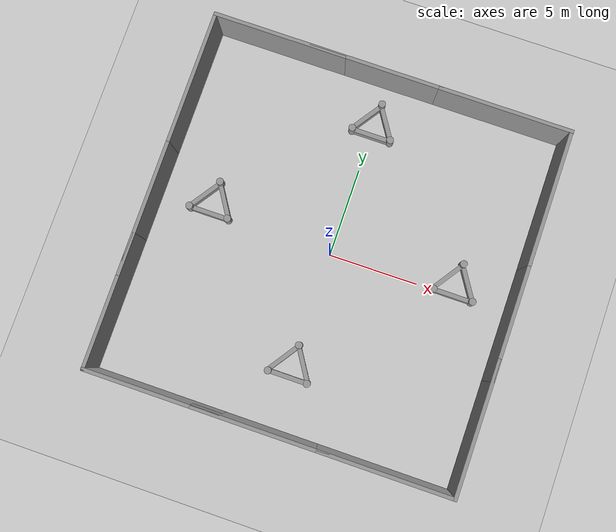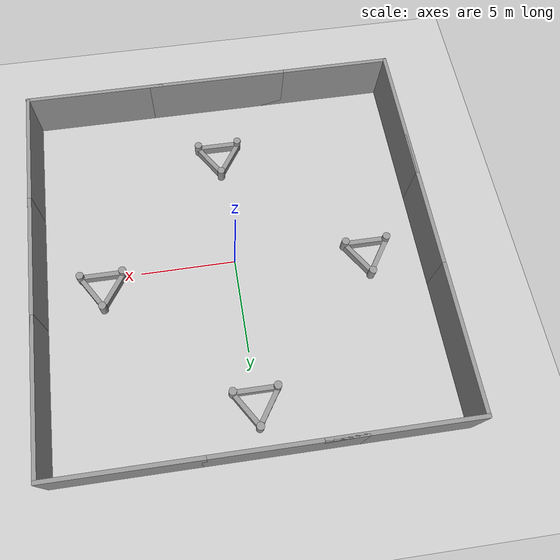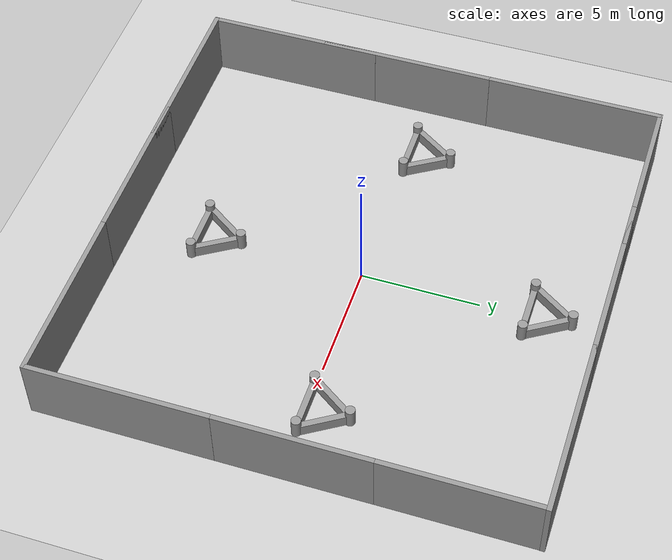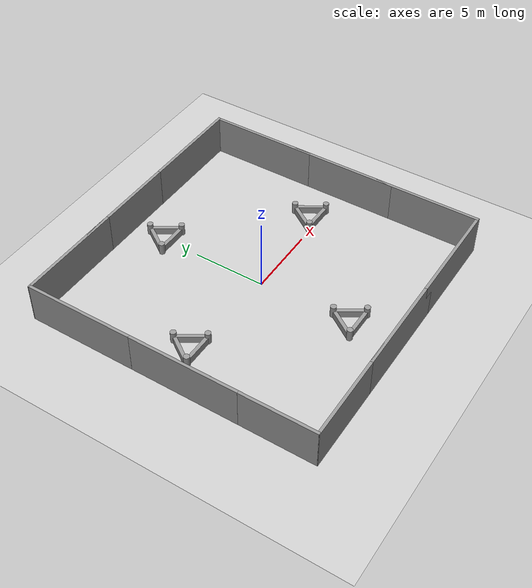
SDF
<sdf version="1.7">
 <world name="default">
  <light name="sun" type="directional">
   <pose>0 0 10 0 -0 0</pose>
   <diffuse>0.8 0.8 0.8 1</diffuse>
   <specular>0.2 0.2 0.2 1</specular>
   <attenuation>
    <range>1000</range>
    <constant>0.9</constant>
    <linear>0.01</linear>
    <quadratic>0.001</quadratic>
   </attenuation>
   <direction>-0.5 0.1 -0.9</direction>
   <spot><inner_angle>0</inner_angle><outer_angle>0</outer_angle><falloff>0</falloff></spot>
  </light>
  <model name="ground_plane">
   <static>1</static>
   <link name="link">
    <collision name="collision">
     <geometry><plane><normal>0 0 1</normal><size>100 100</size></plane></geometry>
     <surface><friction><ode><mu>100</mu><mu2>50</mu2></ode></friction></surface>
    </collision>
    <visual name="visual">
     <cast_shadows>0</cast_shadows>
     <geometry><plane><normal>0 0 1</normal><size>100 100</size></plane></geometry>
     <material>
      <script><uri>file://media/materials/scripts/gazebo.material</uri><name>Gazebo/Grey</name></script>
     </material>
    </visual>
   </link>
  </model>
  <gravity>0 0 -9.8</gravity>
  <magnetic_field>6e-06 2.3e-05 -4.2e-05</magnetic_field>
  <atmosphere type="adiabatic"/>
  <physics type="ode">
   <max_step_size>0.001</max_step_size>
   <real_time_factor>1</real_time_factor>
   <real_time_update_rate>1000</real_time_update_rate>
  </physics>
  <scene><ambient>0.4 0.4 0.4 1</ambient><background>0.7 0.7 0.7 1</background><shadows>1</shadows></scene>
  <spherical_coordinates>
   <surface_model>EARTH_WGS84</surface_model>
   <latitude_deg>0</latitude_deg>
   <longitude_deg>0</longitude_deg>
   <elevation>0</elevation>
   <heading_deg>0</heading_deg>
  </spherical_coordinates>
  <model name="grey_wall">
   <static>1</static>
   <link name="link">
    <pose>0 0 1.4 0 -0 0</pose>
    <collision name="collision"><geometry><box><size>7.5 0.2 2.8</size></box></geometry></collision>
    <visual name="visual">
     <cast_shadows>0</cast_shadows>
     <geometry><box><size>7.5 0.2 2.8</size></box></geometry>
     <material>
      <script>
       <uri>model://grey_wall/materials/scripts</uri>
       <uri>model://grey_wall/materials/textures</uri>
       <name>vrc/grey_wall</name>
      </script>
     </material>
    </visual>
   </link>
   <pose>-6.282 10.0545 0 0 -0 0</pose>
  </model>
  <model name="grey_wall_0">
   <static>1</static>
   <link name="link">
    <pose>0 0 1.4 0 -0 0</pose>
    <collision name="collision"><geometry><box><size>7.5 0.2 2.8</size></box></geometry></collision>
    <visual name="visual">
     <cast_shadows>0</cast_shadows>
     <geometry><box><size>7.5 0.2 2.8</size></box></geometry>
     <material>
      <script>
       <uri>model://grey_wall/materials/scripts</uri>
       <uri>model://grey_wall/materials/textures</uri>
       <name>vrc/grey_wall</name>
      </script>
     </material>
    </visual>
   </link>
   <pose>-0.815722 10.0545 0 0 -0 0</pose>
  </model>
  <model name="grey_wall_1">
   <static>1</static>
   <link name="link">
    <pose>0 0 1.4 0 -0 0</pose>
    <collision name="collision"><geometry><box><size>7.5 0.2 2.8</size></box></geometry></collision>
    <visual name="visual">
     <cast_shadows>0</cast_shadows>
     <geometry><box><size>7.5 0.2 2.8</size></box></geometry>
     <material>
      <script>
       <uri>model://grey_wall/materials/scripts</uri>
       <uri>model://grey_wall/materials/textures</uri>
       <name>vrc/grey_wall</name>
      </script>
     </material>
    </visual>
   </link>
   <pose>6.42629 10.0545 0 0 -0 0</pose>
  </model>
  <model name="grey_wall_2">
   <static>1</static>
   <link name="link">
    <pose>0 0 1.4 0 -0 0</pose>
    <collision name="collision"><geometry><box><size>7.5 0.2 2.8</size></box></geometry></collision>
    <visual name="visual">
     <cast_shadows>0</cast_shadows>
     <geometry><box><size>7.5 0.2 2.8</size></box></geometry>
     <material>
      <script>
       <uri>model://grey_wall/materials/scripts</uri>
       <uri>model://grey_wall/materials/textures</uri>
       <name>vrc/grey_wall</name>
      </script>
     </material>
    </visual>
   </link>
   <pose>10.0654 6.24894 0 0 0 -1.57098</pose>
  </model>
  <model name="grey_wall_2_clone">
   <static>1</static>
   <link name="link">
    <pose>0 0 1.4 0 -0 0</pose>
    <collision name="collision"><geometry><box><size>7.5 0.2 2.8</size></box></geometry></collision>
    <visual name="visual">
     <cast_shadows>0</cast_shadows>
     <geometry><box><size>7.5 0.2 2.8</size></box></geometry>
     <material>
      <script>
       <uri>model://grey_wall/materials/scripts</uri>
       <uri>model://grey_wall/materials/textures</uri>
       <name>vrc/grey_wall</name>
      </script>
     </material>
    </visual>
   </link>
   <pose>10.0654 -0.052119 0 0 0 -1.57098</pose>
  </model>
  <model name="grey_wall_2_clone_0">
   <static>1</static>
   <link name="link">
    <pose>0 0 1.4 0 -0 0</pose>
    <collision name="collision"><geometry><box><size>7.5 0.2 2.8</size></box></geometry></collision>
    <visual name="visual">
     <cast_shadows>0</cast_shadows>
     <geometry><box><size>7.5 0.2 2.8</size></box></geometry>
     <material>
      <script>
       <uri>model://grey_wall/materials/scripts</uri>
       <uri>model://grey_wall/materials/textures</uri>
       <name>vrc/grey_wall</name>
      </script>
     </material>
    </visual>
   </link>
   <pose>10.0654 -6.2879 0 0 0 -1.57098</pose>
  </model>
  <model name="grey_wall_2_clone_0_clone">
   <static>1</static>
   <link name="link">
    <pose>0 0 1.4 0 -0 0</pose>
    <collision name="collision"><geometry><box><size>7.5 0.2 2.8</size></box></geometry></collision>
    <visual name="visual">
     <cast_shadows>0</cast_shadows>
     <geometry><box><size>7.5 0.2 2.8</size></box></geometry>
     <material>
      <script>
       <uri>model://grey_wall/materials/scripts</uri>
       <uri>model://grey_wall/materials/textures</uri>
       <name>vrc/grey_wall</name>
      </script>
     </material>
    </visual>
   </link>
   <pose>-9.93662 6.34839 0 0 0 -1.57098</pose>
  </model>
  <model name="grey_wall_2_clone_0_clone_clone">
   <static>1</static>
   <link name="link">
    <pose>0 0 1.4 0 -0 0</pose>
    <collision name="collision"><geometry><box><size>7.5 0.2 2.8</size></box></geometry></collision>
    <visual name="visual">
     <cast_shadows>0</cast_shadows>
     <geometry><box><size>7.5 0.2 2.8</size></box></geometry>
     <material>
      <script>
       <uri>model://grey_wall/materials/scripts</uri>
       <uri>model://grey_wall/materials/textures</uri>
       <name>vrc/grey_wall</name>
      </script>
     </material>
    </visual>
   </link>
   <pose>-9.93662 -1.11197 0 0 0 -1.57098</pose>
  </model>
  <model name="grey_wall_2_clone_0_clone_clone_clone">
   <static>1</static>
   <link name="link">
    <pose>0 0 1.4 0 -0 0</pose>
    <collision name="collision"><geometry><box><size>7.5 0.2 2.8</size></box></geometry></collision>
    <visual name="visual">
     <cast_shadows>0</cast_shadows>
     <geometry><box><size>7.5 0.2 2.8</size></box></geometry>
     <material>
      <script>
       <uri>model://grey_wall/materials/scripts</uri>
       <uri>model://grey_wall/materials/textures</uri>
       <name>vrc/grey_wall</name>
      </script>
     </material>
    </visual>
   </link>
   <pose>-9.93662 -6.25521 0 0 0 -1.57098</pose>
  </model>
  <model name="grey_wall_1_clone">
   <static>1</static>
   <link name="link">
    <pose>0 0 1.4 0 -0 0</pose>
    <collision name="collision"><geometry><box><size>7.5 0.2 2.8</size></box></geometry></collision>
    <visual name="visual">
     <cast_shadows>0</cast_shadows>
     <geometry><box><size>7.5 0.2 2.8</size></box></geometry>
     <material>
      <script>
       <uri>model://grey_wall/materials/scripts</uri>
       <uri>model://grey_wall/materials/textures</uri>
       <name>vrc/grey_wall</name>
      </script>
     </material>
    </visual>
   </link>
   <pose>6.41141 -9.9422 0 0 -0 0</pose>
  </model>
  <model name="grey_wall_1_clone_clone">
   <static>1</static>
   <link name="link">
    <pose>0 0 1.4 0 -0 0</pose>
    <collision name="collision"><geometry><box><size>7.5 0.2 2.8</size></box></geometry></collision>
    <visual name="visual">
     <cast_shadows>0</cast_shadows>
     <geometry><box><size>7.5 0.2 2.8</size></box></geometry>
     <material>
      <script>
       <uri>model://grey_wall/materials/scripts</uri>
       <uri>model://grey_wall/materials/textures</uri>
       <name>vrc/grey_wall</name>
      </script>
     </material>
    </visual>
   </link>
   <pose>-0.386943 -9.9422 0 0 -0 0</pose>
  </model>
  <model name="grey_wall_1_clone_clone_0">
   <static>1</static>
   <link name="link">
    <pose>0 0 1.4 0 -0 0</pose>
    <collision name="collision"><geometry><box><size>7.5 0.2 2.8</size></box></geometry></collision>
    <visual name="visual">
     <cast_shadows>0</cast_shadows>
     <geometry><box><size>7.5 0.2 2.8</size></box></geometry>
     <material>
      <script>
       <uri>model://grey_wall/materials/scripts</uri>
       <uri>model://grey_wall/materials/textures</uri>
       <name>vrc/grey_wall</name>
      </script>
     </material>
    </visual>
   </link>
   <pose>-6.26999 -9.9422 0 0 -0 0</pose>
  </model>
  <model name="model_01_with_plugin">
   <pose>7 0 0.1 0 0 0</pose>
   <static>false</static>
   <include><uri>model://custom_final_obj</uri></include>
   <plugin name="moving_plugin" filename="libmoving_plugin.so">
    <linear_vel>0.2</linear_vel>
    <iterations>15000</iterations>
    <axis>2</axis>
    <start_direction>1</start_direction>
   </plugin>
  </model>
  <model name="model_02_with_plugin">
   <pose>0 7 0.1 0 0 0</pose>
   <static>false</static>
   <include><uri>model://custom_final_obj</uri></include>
   <plugin name="moving_plugin" filename="libmoving_plugin.so">
    <linear_vel>0.2</linear_vel>
    <iterations>15000</iterations>
    <axis>1</axis>
    <start_direction>-1</start_direction>
   </plugin>
  </model>
  <model name="model_03_with_plugin">
   <pose>-7 0 0.1 0 0 0</pose>
   <static>false</static>
   <include><uri>model://custom_final_obj</uri></include>
   <plugin name="moving_plugin" filename="libmoving_plugin.so">
    <linear_vel>0.2</linear_vel>
    <iterations>15000</iterations>
    <axis>2</axis>
    <start_direction>-1</start_direction>
   </plugin>
  </model>
  <model name="model_04_with_plugin">
   <pose>0 -7 0.1 0 0 0</pose>
   <static>false</static>
   <include><uri>model://custom_final_obj</uri></include>
   <plugin name="moving_plugin" filename="libmoving_plugin.so">
    <linear_vel>0.2</linear_vel>
    <iterations>15000</iterations>
    <axis>1</axis>
    <start_direction>1</start_direction>
   </plugin>
  </model>
 </world>
</sdf>

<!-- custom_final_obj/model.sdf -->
<sdf version='1.7'>
  <model name='custom_final_obj'>
    <link name='link_0'>
      <inertial>
        <mass>1</mass>
        <inertia>
          <ixx>0.166667</ixx>
          <ixy>0</ixy>
          <ixz>0</ixz>
          <iyy>0.166667</iyy>
          <iyz>0</iyz>
          <izz>0.166667</izz>
        </inertia>
        <pose>0 0 0 0 -0 0</pose>
      </inertial>
      <pose>0 -0 0.25 0 -0 0</pose>
      <gravity>1</gravity>
      <self_collide>0</self_collide>
      <kinematic>0</kinematic>
      <enable_wind>0</enable_wind>
      <visual name='visual'>
        <pose>0 0 0 0 -0 0</pose>
        <geometry>
          <box>
            <size>2 0.25 0.5</size>
          </box>
        </geometry>
        <material>
          <lighting>1</lighting>
          <script>
            <uri>file://media/materials/scripts/gazebo.material</uri>
            <name>Gazebo/Grey</name>
          </script>
          <shader type='pixel'>
            <normal_map>__default__</normal_map>
          </shader>
          <ambient>0.3 0.3 0.3 1</ambient>
          <diffuse>0.7 0.7 0.7 1</diffuse>
          <specular>0.01 0.01 0.01 1</specular>
          <emissive>0 0 0 1</emissive>
        </material>
        <transparency>0</transparency>
        <cast_shadows>1</cast_shadows>
      </visual>
      <collision name='collision'>
        <laser_retro>0</laser_retro>
        <max_contacts>10</max_contacts>
        <pose>0 0 0 0 -0 0</pose>
        <geometry>
          <box>
            <size>2 0.25 0.5</size>
          </box>
        </geometry>
        <surface>
          <friction>
            <ode>
              <mu>0</mu>
              <mu2>0</mu2>
              <fdir1>0 0 0</fdir1>
              <slip1>1</slip1>
              <slip2>1</slip2>
            </ode>
            <torsional>
              <coefficient>1</coefficient>
              <patch_radius>0</patch_radius>
              <surface_radius>0</surface_radius>
              <use_patch_radius>1</use_patch_radius>
              <ode>
                <slip>0</slip>
              </ode>
            </torsional>
          </friction>
          <bounce>
            <restitution_coefficient>0</restitution_coefficient>
            <threshold>1e+06</threshold>
          </bounce>
          <contact>
            <collide_without_contact>0</collide_without_contact>
            <collide_without_contact_bitmask>1</collide_without_contact_bitmask>
            <collide_bitmask>1</collide_bitmask>
            <ode>
              <soft_cfm>0</soft_cfm>
              <soft_erp>0.2</soft_erp>
              <kp>1e+13</kp>
              <kd>1</kd>
              <max_vel>0.01</max_vel>
              <min_depth>0</min_depth>
            </ode>
            <bullet>
              <split_impulse>1</split_impulse>
              <split_impulse_penetration_threshold>-0.01</split_impulse_penetration_threshold>
              <soft_cfm>0</soft_cfm>
              <soft_erp>0.2</soft_erp>
              <kp>1e+13</kp>
              <kd>1</kd>
            </bullet>
          </contact>
        </surface>
      </collision>
    </link>
    <link name='link_0_clone'>
      <inertial>
        <mass>1</mass>
        <inertia>
          <ixx>0.166667</ixx>
          <ixy>0</ixy>
          <ixz>0</ixz>
          <iyy>0.166667</iyy>
          <iyz>0</iyz>
          <izz>0.166667</izz>
        </inertia>
        <pose>0 0 0 0 -0 0</pose>
      </inertial>
      <pose>-0.532788 0.926798 0.250001 -2e-06 -2e-06 -2.1717</pose>
      <gravity>1</gravity>
      <self_collide>0</self_collide>
      <kinematic>0</kinematic>
      <enable_wind>0</enable_wind>
      <visual name='visual'>
        <pose>0 0 0 0 -0 0</pose>
        <geometry>
          <box>
            <size>2 0.25 0.5</size>
          </box>
        </geometry>
        <material>
          <lighting>1</lighting>
          <script>
            <uri>file://media/materials/scripts/gazebo.material</uri>
            <name>Gazebo/Grey</name>
          </script>
          <shader type='pixel'>
            <normal_map>__default__</normal_map>
          </shader>
          <ambient>0.3 0.3 0.3 1</ambient>
          <diffuse>0.7 0.7 0.7 1</diffuse>
          <specular>0.01 0.01 0.01 1</specular>
          <emissive>0 0 0 1</emissive>
        </material>
        <transparency>0</transparency>
        <cast_shadows>1</cast_shadows>
      </visual>
      <collision name='collision'>
        <laser_retro>0</laser_retro>
        <max_contacts>10</max_contacts>
        <pose>0 0 0 0 -0 0</pose>
        <geometry>
          <box>
            <size>2 0.25 0.5</size>
          </box>
        </geometry>
        <surface>
          <friction>
            <ode>
              <mu>0</mu>
              <mu2>0</mu2>
              <fdir1>0 0 0</fdir1>
              <slip1>1</slip1>
              <slip2>1</slip2>
            </ode>
            <torsional>
              <coefficient>1</coefficient>
              <patch_radius>0</patch_radius>
              <surface_radius>0</surface_radius>
              <use_patch_radius>1</use_patch_radius>
              <ode>
                <slip>0</slip>
              </ode>
            </torsional>
          </friction>
          <bounce>
            <restitution_coefficient>0</restitution_coefficient>
            <threshold>1e+06</threshold>
          </bounce>
          <contact>
            <collide_without_contact>0</collide_without_contact>
            <collide_without_contact_bitmask>1</collide_without_contact_bitmask>
            <collide_bitmask>1</collide_bitmask>
            <ode>
              <soft_cfm>0</soft_cfm>
              <soft_erp>0.2</soft_erp>
              <kp>1e+13</kp>
              <kd>1</kd>
              <max_vel>0.01</max_vel>
              <min_depth>0</min_depth>
            </ode>
            <bullet>
              <split_impulse>1</split_impulse>
              <split_impulse_penetration_threshold>-0.01</split_impulse_penetration_threshold>
              <soft_cfm>0</soft_cfm>
              <soft_erp>0.2</soft_erp>
              <kp>1e+13</kp>
              <kd>1</kd>
            </bullet>
          </contact>
        </surface>
      </collision>
    </link>
    <link name='link_0_clone_clone'>
      <inertial>
        <mass>1</mass>
        <inertia>
          <ixx>0.166667</ixx>
          <ixy>0</ixy>
          <ixz>0</ixz>
          <iyy>0.166667</iyy>
          <iyz>0</iyz>
          <izz>0.166667</izz>
        </inertia>
        <pose>0 0 0 0 -0 0</pose>
      </inertial>
      <pose>0.553452 0.921008 0.25 -5e-06 3e-06 -1.00541</pose>
      <gravity>1</gravity>
      <self_collide>0</self_collide>
      <kinematic>0</kinematic>
      <enable_wind>0</enable_wind>
      <visual name='visual'>
        <pose>0 0 0 0 -0 0</pose>
        <geometry>
          <box>
            <size>2 0.25 0.5</size>
          </box>
        </geometry>
        <material>
          <lighting>1</lighting>
          <script>
            <uri>file://media/materials/scripts/gazebo.material</uri>
            <name>Gazebo/Grey</name>
          </script>
          <shader type='pixel'>
            <normal_map>__default__</normal_map>
          </shader>
          <ambient>0.3 0.3 0.3 1</ambient>
          <diffuse>0.7 0.7 0.7 1</diffuse>
          <specular>0.01 0.01 0.01 1</specular>
          <emissive>0 0 0 1</emissive>
        </material>
        <transparency>0</transparency>
        <cast_shadows>1</cast_shadows>
      </visual>
      <collision name='collision'>
        <laser_retro>0</laser_retro>
        <max_contacts>10</max_contacts>
        <pose>0 0 0 0 -0 0</pose>
        <geometry>
          <box>
            <size>2 0.25 0.5</size>
          </box>
        </geometry>
        <surface>
          <friction>
            <ode>
              <mu>0</mu>
              <mu2>0</mu2>
              <fdir1>0 0 0</fdir1>
              <slip1>1</slip1>
              <slip2>1</slip2>
            </ode>
            <torsional>
              <coefficient>1</coefficient>
              <patch_radius>0</patch_radius>
              <surface_radius>0</surface_radius>
              <use_patch_radius>1</use_patch_radius>
              <ode>
                <slip>0</slip>
              </ode>
            </torsional>
          </friction>
          <bounce>
            <restitution_coefficient>0</restitution_coefficient>
            <threshold>1e+06</threshold>
          </bounce>
          <contact>
            <collide_without_contact>0</collide_without_contact>
            <collide_without_contact_bitmask>1</collide_without_contact_bitmask>
            <collide_bitmask>1</collide_bitmask>
            <ode>
              <soft_cfm>0</soft_cfm>
              <soft_erp>0.2</soft_erp>
              <kp>1e+13</kp>
              <kd>1</kd>
              <max_vel>0.01</max_vel>
              <min_depth>0</min_depth>
            </ode>
            <bullet>
              <split_impulse>1</split_impulse>
              <split_impulse_penetration_threshold>-0.01</split_impulse_penetration_threshold>
              <soft_cfm>0</soft_cfm>
              <soft_erp>0.2</soft_erp>
              <kp>1e+13</kp>
              <kd>1</kd>
            </bullet>
          </contact>
        </surface>
      </collision>
    </link>
    <link name='link_1'>
      <inertial>
        <mass>1</mass>
        <inertia>
          <ixx>0.145833</ixx>
          <ixy>0</ixy>
          <ixz>0</ixz>
          <iyy>0.145833</iyy>
          <iyz>0</iyz>
          <izz>0.125</izz>
        </inertia>
        <pose>0 0 0 0 -0 0</pose>
      </inertial>
      <pose>1.1 0 0.4 0 -0 0</pose>
      <gravity>1</gravity>
      <self_collide>0</self_collide>
      <kinematic>0</kinematic>
      <enable_wind>0</enable_wind>
      <visual name='visual'>
        <pose>0 0 0 0 -0 0</pose>
        <geometry>
          <cylinder>
            <radius>0.2</radius>
            <length>0.8</length>
          </cylinder>
        </geometry>
        <material>
          <lighting>1</lighting>
          <script>
            <uri>file://media/materials/scripts/gazebo.material</uri>
            <name>Gazebo/Grey</name>
          </script>
          <shader type='pixel'>
            <normal_map>__default__</normal_map>
          </shader>
          <ambient>0.3 0.3 0.3 1</ambient>
          <diffuse>0.7 0.7 0.7 1</diffuse>
          <specular>0.01 0.01 0.01 1</specular>
          <emissive>0 0 0 1</emissive>
        </material>
        <transparency>0</transparency>
        <cast_shadows>1</cast_shadows>
      </visual>
      <collision name='collision'>
        <laser_retro>0</laser_retro>
        <max_contacts>10</max_contacts>
        <pose>0 0 0 0 -0 0</pose>
        <geometry>
          <cylinder>
            <radius>0.2</radius>
            <length>0.8</length>
          </cylinder>
        </geometry>
        <surface>
          <friction>
            <ode>
              <mu>0</mu>
              <mu2>0</mu2>
              <fdir1>0 0 0</fdir1>
              <slip1>1</slip1>
              <slip2>1</slip2>
            </ode>
            <torsional>
              <coefficient>1</coefficient>
              <patch_radius>0</patch_radius>
              <surface_radius>0</surface_radius>
              <use_patch_radius>1</use_patch_radius>
              <ode>
                <slip>0</slip>
              </ode>
            </torsional>
          </friction>
          <bounce>
            <restitution_coefficient>0</restitution_coefficient>
            <threshold>1e+06</threshold>
          </bounce>
          <contact>
            <collide_without_contact>0</collide_without_contact>
            <collide_without_contact_bitmask>1</collide_without_contact_bitmask>
            <collide_bitmask>1</collide_bitmask>
            <ode>
              <soft_cfm>0</soft_cfm>
              <soft_erp>0.2</soft_erp>
              <kp>1e+13</kp>
              <kd>1</kd>
              <max_vel>0.01</max_vel>
              <min_depth>0</min_depth>
            </ode>
            <bullet>
              <split_impulse>1</split_impulse>
              <split_impulse_penetration_threshold>-0.01</split_impulse_penetration_threshold>
              <soft_cfm>0</soft_cfm>
              <soft_erp>0.2</soft_erp>
              <kp>1e+13</kp>
              <kd>1</kd>
            </bullet>
          </contact>
        </surface>
      </collision>
    </link>
    <link name='link_1_clone'>
      <inertial>
        <mass>1</mass>
        <inertia>
          <ixx>0.145833</ixx>
          <ixy>0</ixy>
          <ixz>0</ixz>
          <iyy>0.145833</iyy>
          <iyz>0</iyz>
          <izz>0.125</izz>
        </inertia>
        <pose>0 0 0 0 -0 0</pose>
      </inertial>
      <pose>-1.1 -0 0.4 0 -0 0</pose>
      <gravity>1</gravity>
      <self_collide>0</self_collide>
      <kinematic>0</kinematic>
      <enable_wind>0</enable_wind>
      <visual name='visual'>
        <pose>0 0 0 0 -0 0</pose>
        <geometry>
          <cylinder>
            <radius>0.2</radius>
            <length>0.8</length>
          </cylinder>
        </geometry>
        <material>
          <lighting>1</lighting>
          <script>
            <uri>file://media/materials/scripts/gazebo.material</uri>
            <name>Gazebo/Grey</name>
          </script>
          <shader type='pixel'>
            <normal_map>__default__</normal_map>
          </shader>
          <ambient>0.3 0.3 0.3 1</ambient>
          <diffuse>0.7 0.7 0.7 1</diffuse>
          <specular>0.01 0.01 0.01 1</specular>
          <emissive>0 0 0 1</emissive>
        </material>
        <transparency>0</transparency>
        <cast_shadows>1</cast_shadows>
      </visual>
      <collision name='collision'>
        <laser_retro>0</laser_retro>
        <max_contacts>10</max_contacts>
        <pose>0 0 0 0 -0 0</pose>
        <geometry>
          <cylinder>
            <radius>0.2</radius>
            <length>0.8</length>
          </cylinder>
        </geometry>
        <surface>
          <friction>
            <ode>
              <mu>0</mu>
              <mu2>0</mu2>
              <fdir1>0 0 0</fdir1>
              <slip1>1</slip1>
              <slip2>1</slip2>
            </ode>
            <torsional>
              <coefficient>1</coefficient>
              <patch_radius>0</patch_radius>
              <surface_radius>0</surface_radius>
              <use_patch_radius>1</use_patch_radius>
              <ode>
                <slip>0</slip>
              </ode>
            </torsional>
          </friction>
          <bounce>
            <restitution_coefficient>0</restitution_coefficient>
            <threshold>1e+06</threshold>
          </bounce>
          <contact>
            <collide_without_contact>0</collide_without_contact>
            <collide_without_contact_bitmask>1</collide_without_contact_bitmask>
            <collide_bitmask>1</collide_bitmask>
            <ode>
              <soft_cfm>0</soft_cfm>
              <soft_erp>0.2</soft_erp>
              <kp>1e+13</kp>
              <kd>1</kd>
              <max_vel>0.01</max_vel>
              <min_depth>0</min_depth>
            </ode>
            <bullet>
              <split_impulse>1</split_impulse>
              <split_impulse_penetration_threshold>-0.01</split_impulse_penetration_threshold>
              <soft_cfm>0</soft_cfm>
              <soft_erp>0.2</soft_erp>
              <kp>1e+13</kp>
              <kd>1</kd>
            </bullet>
          </contact>
        </surface>
      </collision>
    </link>
    <link name='link_1_clone_0'>
      <inertial>
        <mass>1</mass>
        <inertia>
          <ixx>0.145833</ixx>
          <ixy>0</ixy>
          <ixz>0</ixz>
          <iyy>0.145833</iyy>
          <iyz>0</iyz>
          <izz>0.125</izz>
        </inertia>
        <pose>0 0 0 0 -0 0</pose>
      </inertial>
      <pose>0.033379 1.79383 0.4 -0 3e-06 -8e-06</pose>
      <gravity>1</gravity>
      <self_collide>0</self_collide>
      <kinematic>0</kinematic>
      <enable_wind>0</enable_wind>
      <visual name='visual'>
        <pose>0 0 0 0 -0 0</pose>
        <geometry>
          <cylinder>
            <radius>0.2</radius>
            <length>0.8</length>
          </cylinder>
        </geometry>
        <material>
          <lighting>1</lighting>
          <script>
            <uri>file://media/materials/scripts/gazebo.material</uri>
            <name>Gazebo/Grey</name>
          </script>
          <shader type='pixel'>
            <normal_map>__default__</normal_map>
          </shader>
          <ambient>0.3 0.3 0.3 1</ambient>
          <diffuse>0.7 0.7 0.7 1</diffuse>
          <specular>0.01 0.01 0.01 1</specular>
          <emissive>0 0 0 1</emissive>
        </material>
        <transparency>0</transparency>
        <cast_shadows>1</cast_shadows>
      </visual>
      <collision name='collision'>
        <laser_retro>0</laser_retro>
        <max_contacts>10</max_contacts>
        <pose>0 0 0 0 -0 0</pose>
        <geometry>
          <cylinder>
            <radius>0.2</radius>
            <length>0.8</length>
          </cylinder>
        </geometry>
        <surface>
          <friction>
            <ode>
              <mu>0</mu>
              <mu2>0</mu2>
              <fdir1>0 0 0</fdir1>
              <slip1>1</slip1>
              <slip2>1</slip2>
            </ode>
            <torsional>
              <coefficient>1</coefficient>
              <patch_radius>0</patch_radius>
              <surface_radius>0</surface_radius>
              <use_patch_radius>1</use_patch_radius>
              <ode>
                <slip>0</slip>
              </ode>
            </torsional>
          </friction>
          <bounce>
            <restitution_coefficient>0</restitution_coefficient>
            <threshold>1e+06</threshold>
          </bounce>
          <contact>
            <collide_without_contact>0</collide_without_contact>
            <collide_without_contact_bitmask>1</collide_without_contact_bitmask>
            <collide_bitmask>1</collide_bitmask>
            <ode>
              <soft_cfm>0</soft_cfm>
              <soft_erp>0.2</soft_erp>
              <kp>1e+13</kp>
              <kd>1</kd>
              <max_vel>0.01</max_vel>
              <min_depth>0</min_depth>
            </ode>
            <bullet>
              <split_impulse>1</split_impulse>
              <split_impulse_penetration_threshold>-0.01</split_impulse_penetration_threshold>
              <soft_cfm>0</soft_cfm>
              <soft_erp>0.2</soft_erp>
              <kp>1e+13</kp>
              <kd>1</kd>
            </bullet>
          </contact>
        </surface>
      </collision>
    </link>
    <static>0</static>
    <allow_auto_disable>1</allow_auto_disable>
  </model>
</sdf>
